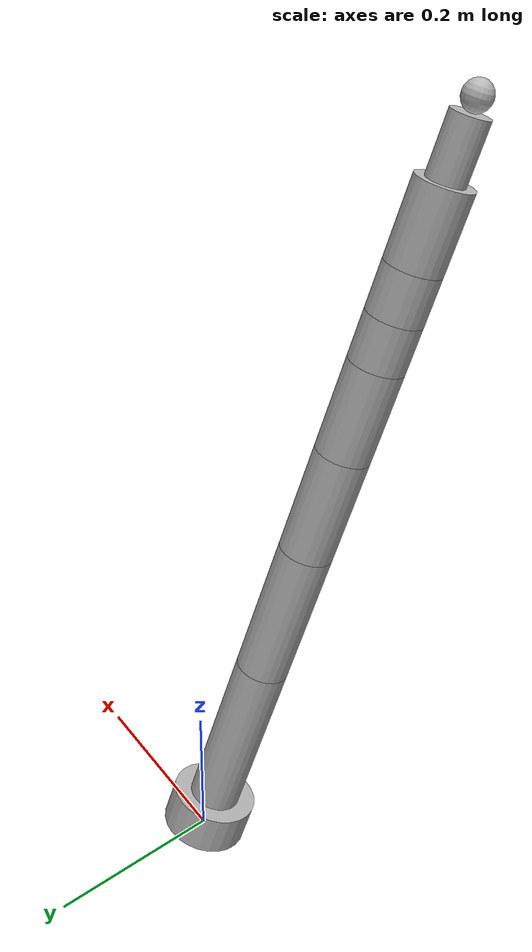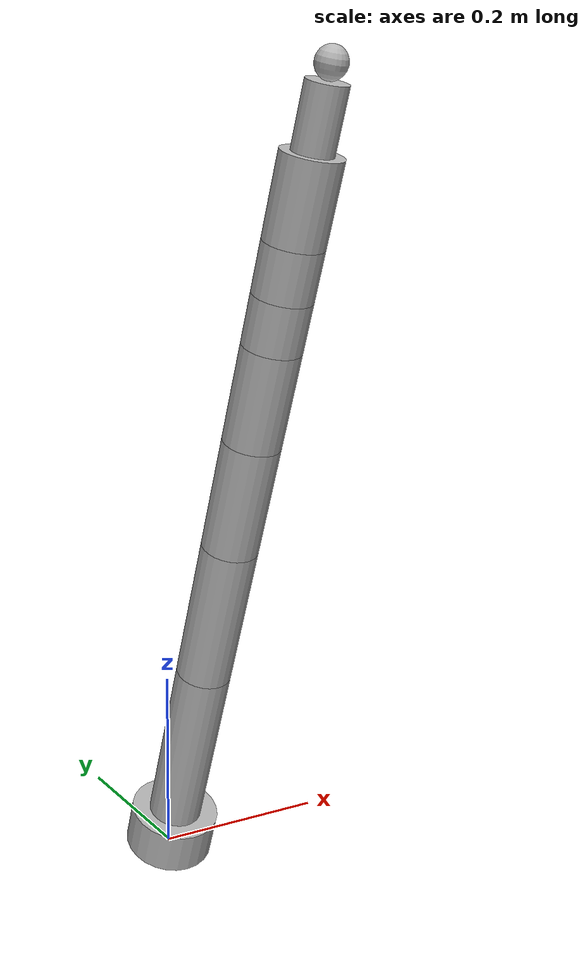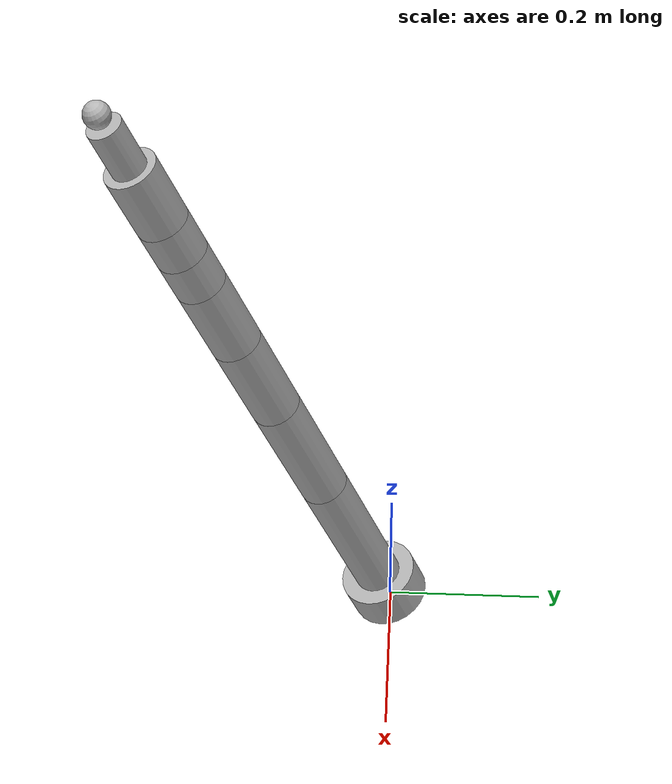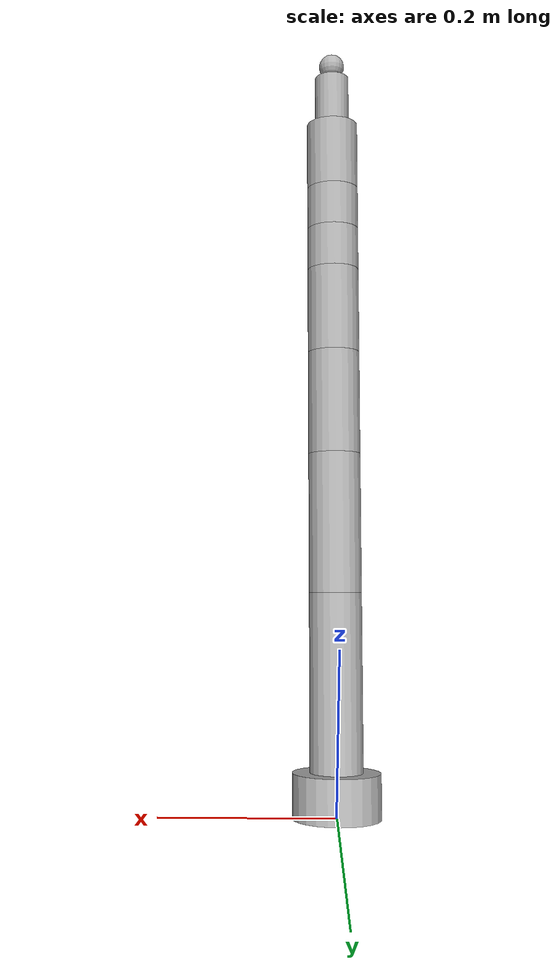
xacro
<?xml version="1.0"?>
<robot name="redburi_arm" xmlns:xacro="http://www.ros.org/wiki/xacro">
  <xacro:property name="link_radius" value="0.03"/>
  <xacro:property name="link1_len" value="0.20"/>
  <xacro:property name="link2_len" value="0.16"/>
  <xacro:property name="link3_len" value="0.12"/>
  <xacro:property name="link4_len" value="0.10"/>
  <xacro:property name="link5_len" value="0.05"/>
  <xacro:property name="link6_len" value="0.05"/>
  <xacro:property name="link7_len" value="0.08"/>
  <xacro:property name="gripper_len" value="0.06"/>
  <xacro:property name="gripper_radius" value="0.02"/>
  <xacro:property name="mount_roll" value="0.349"/>
  <xacro:property name="mount_pitch" value="0.0"/>
  <xacro:property name="mount_yaw" value="0.0"/>

  <material name="gray">
    <color rgba="0.7 0.7 0.7 1.0"/>
  </material>

  <link name="base_mount"/>

  <joint name="base_mount_to_base_link" type="fixed">
    <parent link="base_mount"/>
    <child link="base_link"/>
    <origin xyz="0 0 0" rpy="${mount_roll} ${mount_pitch} ${mount_yaw}"/>
  </joint>

  <link name="base_link">
    <visual>
      <origin xyz="0 0 0.025" rpy="0 0 0"/>
      <geometry>
        <cylinder radius="0.05" length="0.05"/>
      </geometry>
      <material name="gray"/>
    </visual>
  </link>

  <link name="link_1">
    <visual>
      <origin xyz="0 0 ${link1_len / 2.0}" rpy="0 0 0"/>
      <geometry>
        <cylinder radius="${link_radius}" length="${link1_len}"/>
      </geometry>
      <material name="gray"/>
    </visual>
  </link>

  <joint name="base_link_to_link_1" type="fixed">
    <parent link="base_link"/>
    <child link="link_1"/>
    <origin xyz="0 0 0.05" rpy="0 0 0"/>
  </joint>

  <link name="link_2">
    <visual>
      <origin xyz="0 0 ${link2_len / 2.0}" rpy="0 0 0"/>
      <geometry>
        <cylinder radius="${link_radius}" length="${link2_len}"/>
      </geometry>
      <material name="gray"/>
    </visual>
  </link>

  <joint name="joint_1" type="revolute">
    <parent link="link_1"/>
    <child link="link_2"/>
    <origin xyz="0 0 ${link1_len}" rpy="0 0 0"/>
    <axis xyz="0 0 1"/>
    <limit lower="-1.5708" upper="1.5708" effort="1.0" velocity="1.0"/>
  </joint>

  <link name="link_3">
    <visual>
      <origin xyz="0 0 ${link3_len / 2.0}" rpy="0 0 0"/>
      <geometry>
        <cylinder radius="${link_radius}" length="${link3_len}"/>
      </geometry>
      <material name="gray"/>
    </visual>
  </link>

  <joint name="joint_2" type="revolute">
    <parent link="link_2"/>
    <child link="link_3"/>
    <origin xyz="0 0 ${link2_len}" rpy="0 0 0"/>
    <axis xyz="0 1 0"/>
    <limit lower="-1.5708" upper="1.5708" effort="1.0" velocity="1.0"/>
  </joint>

  <link name="link_4">
    <visual>
      <origin xyz="0 0 ${link4_len / 2.0}" rpy="0 0 0"/>
      <geometry>
        <cylinder radius="${link_radius}" length="${link4_len}"/>
      </geometry>
      <material name="gray"/>
    </visual>
  </link>

  <joint name="joint_3" type="revolute">
    <parent link="link_3"/>
    <child link="link_4"/>
    <origin xyz="0 0 ${link3_len}" rpy="0 0 0"/>
    <axis xyz="0 1 0"/>
    <limit lower="-1.5708" upper="1.5708" effort="1.0" velocity="1.0"/>
  </joint>

  <link name="link_5">
    <visual>
      <origin xyz="0 0 ${link5_len / 2.0}" rpy="0 0 0"/>
      <geometry>
        <cylinder radius="${link_radius}" length="${link5_len}"/>
      </geometry>
      <material name="gray"/>
    </visual>
  </link>

  <joint name="joint_4" type="revolute">
    <parent link="link_4"/>
    <child link="link_5"/>
    <origin xyz="0 0 ${link4_len}" rpy="0 0 0"/>
    <axis xyz="0 0 1"/>
    <limit lower="-3.14159" upper="3.14159" effort="1.0" velocity="1.0"/>
  </joint>

  <link name="link_6">
    <visual>
      <origin xyz="0 0 ${link6_len / 2.0}" rpy="0 0 0"/>
      <geometry>
        <cylinder radius="${link_radius}" length="${link6_len}"/>
      </geometry>
      <material name="gray"/>
    </visual>
  </link>

  <joint name="joint_5" type="revolute">
    <parent link="link_5"/>
    <child link="link_6"/>
    <origin xyz="0 0 ${link5_len}" rpy="0 0 0"/>
    <axis xyz="0 1 0"/>
    <limit lower="-1.5708" upper="1.5708" effort="1.0" velocity="1.0"/>
  </joint>

  <link name="link_7">
    <visual>
      <origin xyz="0 0 ${link7_len / 2.0}" rpy="0 0 0"/>
      <geometry>
        <cylinder radius="${link_radius}" length="${link7_len}"/>
      </geometry>
      <material name="gray"/>
    </visual>
  </link>

  <joint name="joint_6" type="revolute">
    <parent link="link_6"/>
    <child link="link_7"/>
    <origin xyz="0 0 ${link6_len}" rpy="0 0 0"/>
    <axis xyz="0 0 1"/>
    <limit lower="-3.14159" upper="3.14159" effort="1.0" velocity="1.0"/>
  </joint>

  <link name="gripper_link">
    <visual>
      <origin xyz="0 0 ${gripper_len / 2.0}" rpy="0 0 0"/>
      <geometry>
        <cylinder radius="${gripper_radius}" length="${gripper_len}"/>
      </geometry>
      <material name="gray"/>
    </visual>
  </link>

  <joint name="gripper_fixed" type="fixed">
    <parent link="link_7"/>
    <child link="gripper_link"/>
    <origin xyz="0 0 ${link7_len}" rpy="0 0 0"/>
  </joint>

  <link name="tool0">
    <visual>
      <origin xyz="0 0 0.015" rpy="0 0 0"/>
      <geometry>
        <sphere radius="0.015"/>
      </geometry>
      <material name="gray"/>
    </visual>
  </link>

  <joint name="tool0_fixed" type="fixed">
    <parent link="gripper_link"/>
    <child link="tool0"/>
    <origin xyz="0 0 ${gripper_len}" rpy="0 0 0"/>
  </joint>
</robot>
